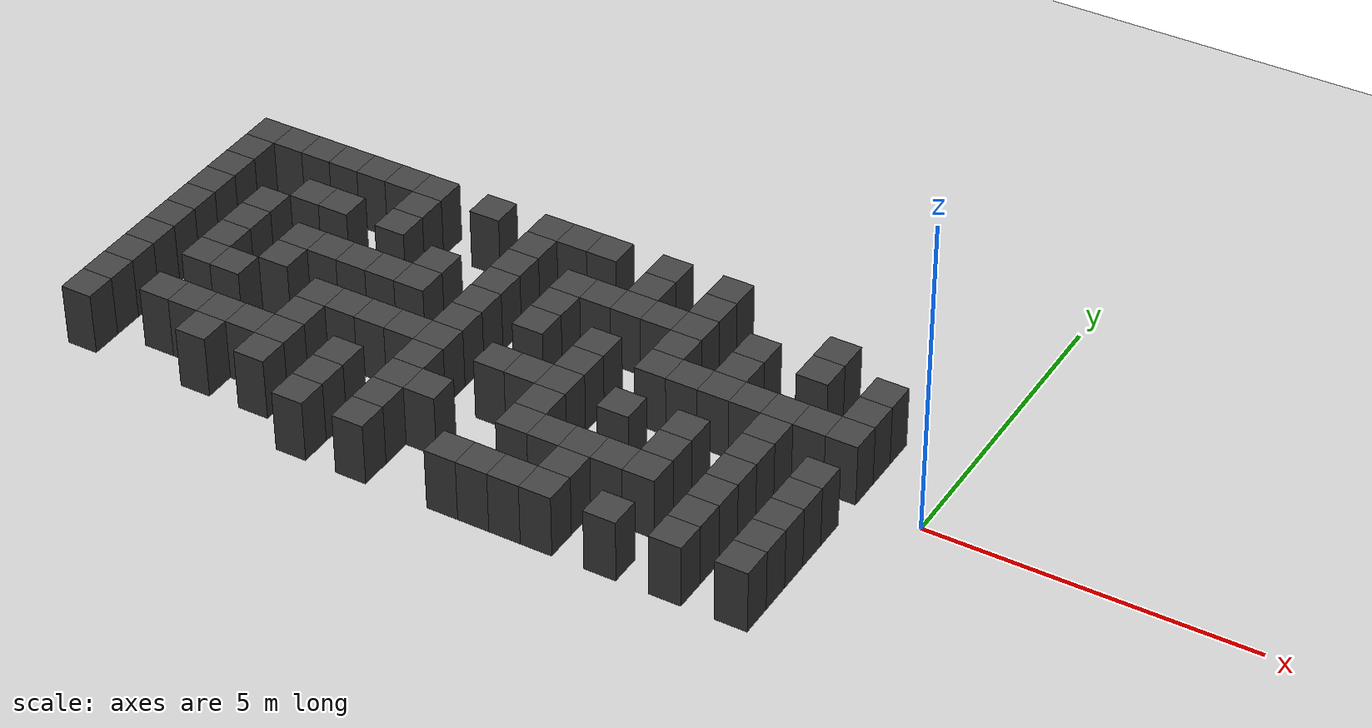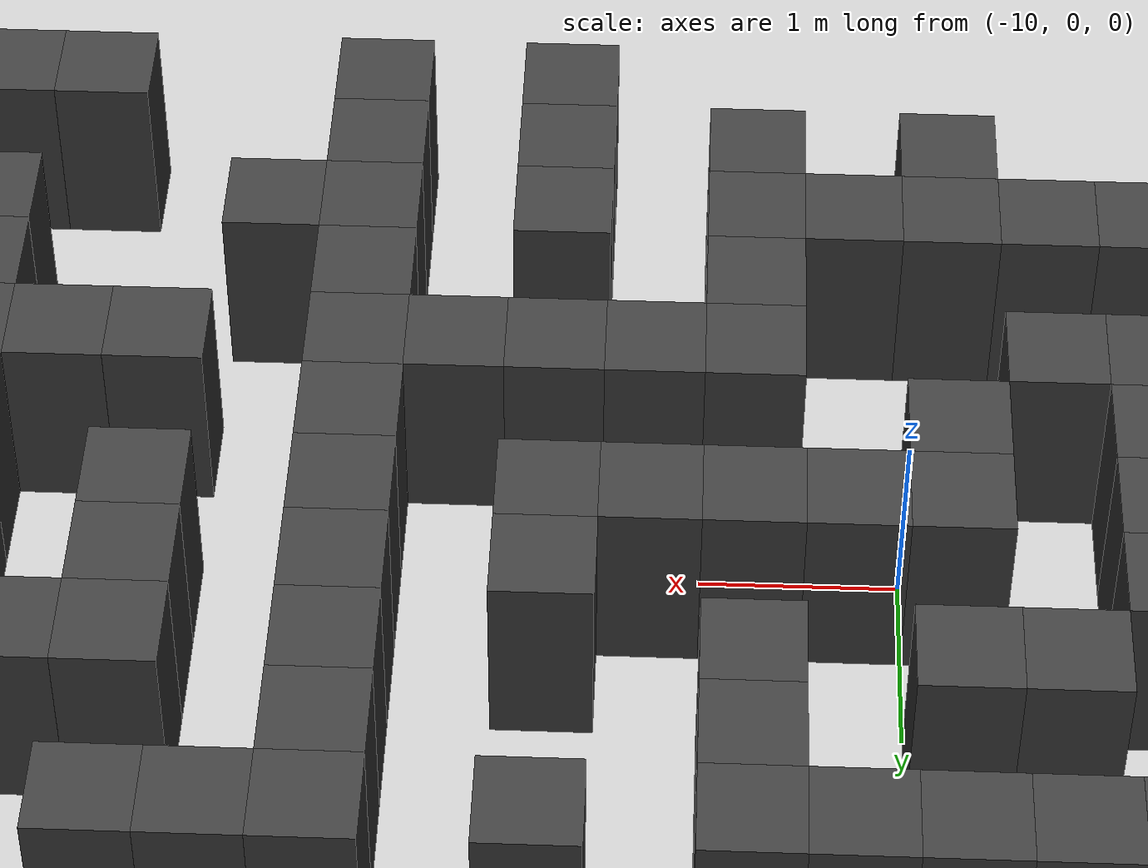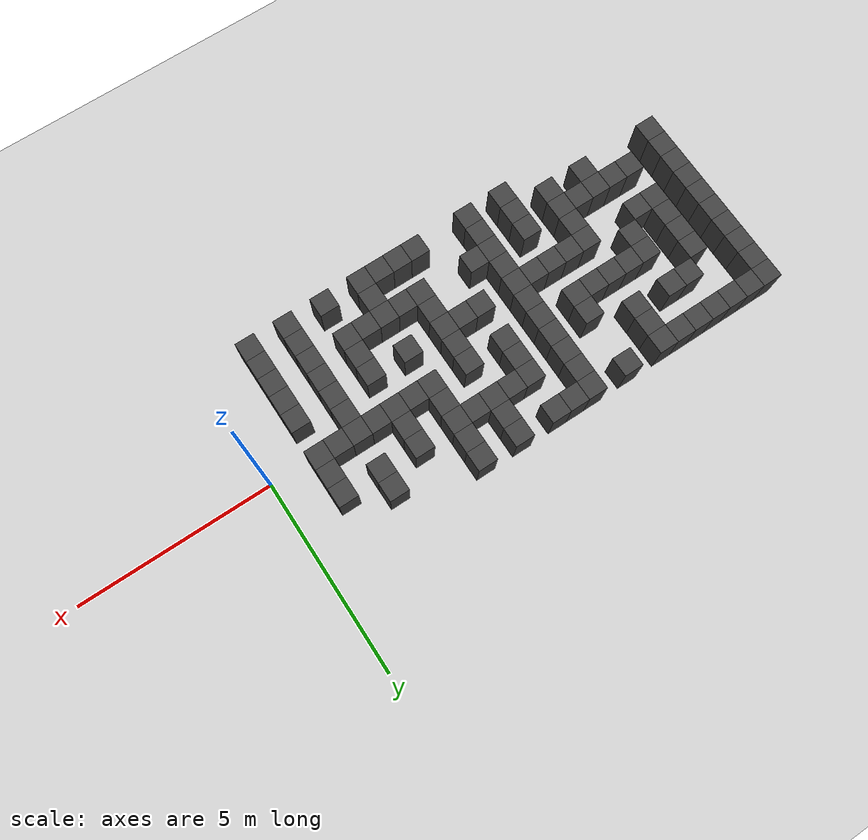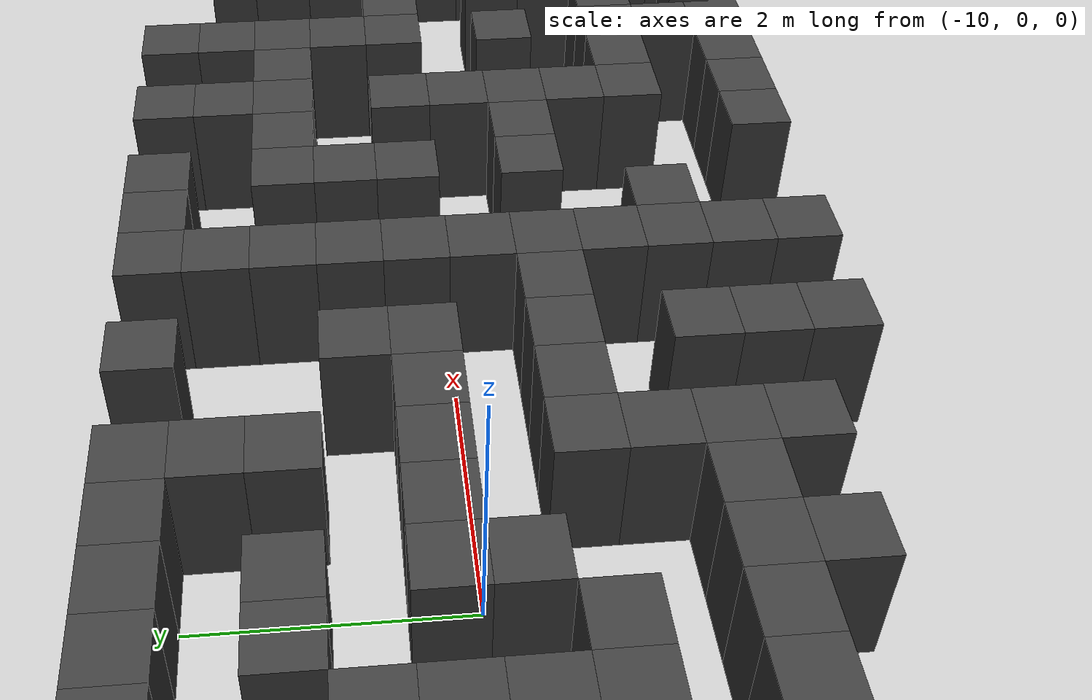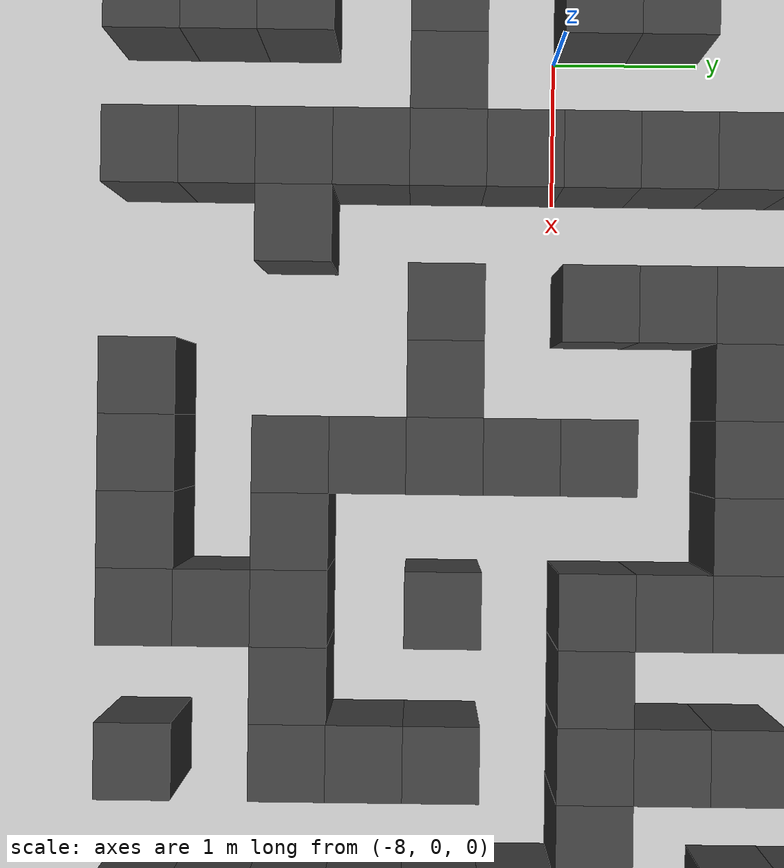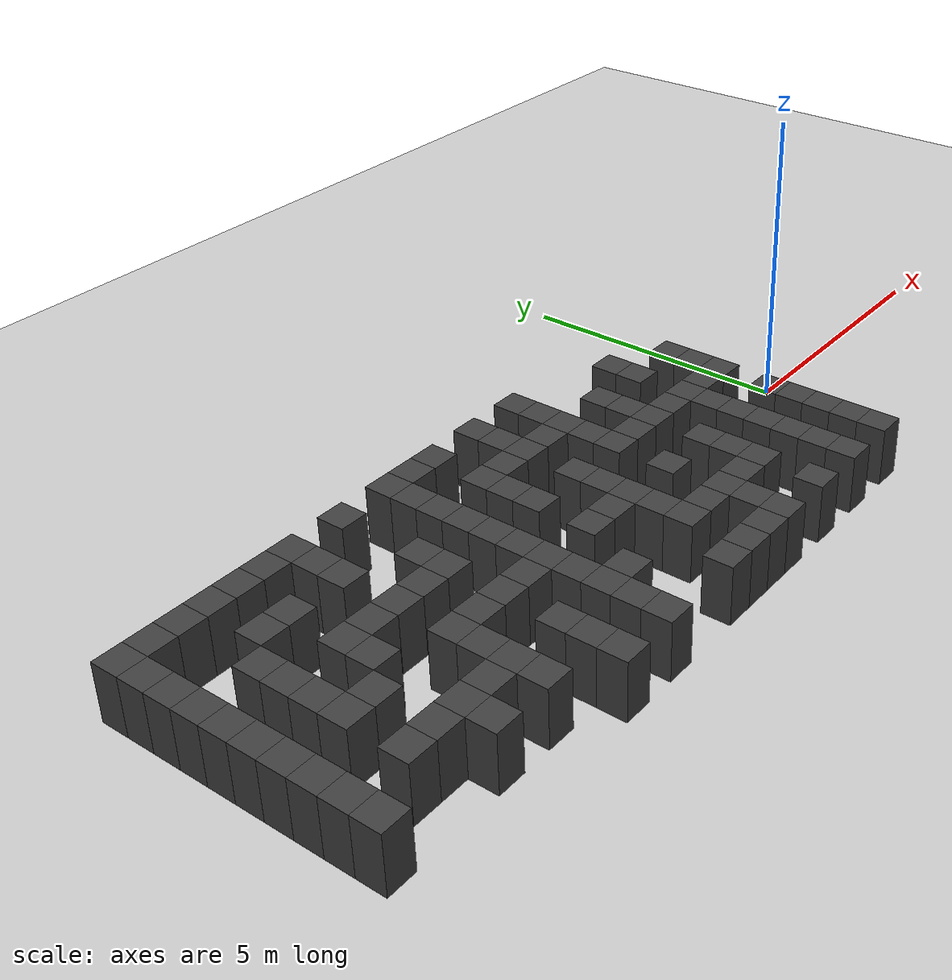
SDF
<sdf version="1.7">
 <world name="map_18228">
  <model name="ground_plane">
   <static>true</static>
   <link name="link">
    <collision name="collision">
     <geometry><plane><normal>0 0 1</normal><size>200 200</size></plane></geometry>
    </collision>
    <visual name="visual">
     <geometry><plane><normal>0 0 1</normal><size>200 200</size></plane></geometry>
     <material><ambient>0.8 0.8 0.8 1</ambient><diffuse>0.8 0.8 0.8 1</diffuse></material>
    </visual>
   </link>
  </model>
  <model name="maze_environment">
   <static>true</static>
   <link name="wall_501">
    <pose>-12.250 2.250 0.500 0 0 0</pose>
    <collision name="col"><geometry><box><size>0.5 0.5 1.0</size></box></geometry></collision>
    <visual name="vis">
     <geometry><box><size>0.5 0.5 1.0</size></box></geometry>
     <material><ambient>0.15 0.15 0.15 1</ambient><diffuse>0.25 0.25 0.25 1</diffuse></material>
    </visual>
   </link>
   <link name="wall_502">
    <pose>-11.750 2.250 0.500 0 0 0</pose>
    <collision name="col"><geometry><box><size>0.5 0.5 1.0</size></box></geometry></collision>
    <visual name="vis">
     <geometry><box><size>0.5 0.5 1.0</size></box></geometry>
     <material><ambient>0.15 0.15 0.15 1</ambient><diffuse>0.25 0.25 0.25 1</diffuse></material>
    </visual>
   </link>
   <link name="wall_503">
    <pose>-11.250 2.250 0.500 0 0 0</pose>
    <collision name="col"><geometry><box><size>0.5 0.5 1.0</size></box></geometry></collision>
    <visual name="vis">
     <geometry><box><size>0.5 0.5 1.0</size></box></geometry>
     <material><ambient>0.15 0.15 0.15 1</ambient><diffuse>0.25 0.25 0.25 1</diffuse></material>
    </visual>
   </link>
   <link name="wall_504">
    <pose>-10.750 2.250 0.500 0 0 0</pose>
    <collision name="col"><geometry><box><size>0.5 0.5 1.0</size></box></geometry></collision>
    <visual name="vis">
     <geometry><box><size>0.5 0.5 1.0</size></box></geometry>
     <material><ambient>0.15 0.15 0.15 1</ambient><diffuse>0.25 0.25 0.25 1</diffuse></material>
    </visual>
   </link>
   <link name="wall_505">
    <pose>-10.250 2.250 0.500 0 0 0</pose>
    <collision name="col"><geometry><box><size>0.5 0.5 1.0</size></box></geometry></collision>
    <visual name="vis">
     <geometry><box><size>0.5 0.5 1.0</size></box></geometry>
     <material><ambient>0.15 0.15 0.15 1</ambient><diffuse>0.25 0.25 0.25 1</diffuse></material>
    </visual>
   </link>
   <link name="wall_506">
    <pose>-9.750 2.250 0.500 0 0 0</pose>
    <collision name="col"><geometry><box><size>0.5 0.5 1.0</size></box></geometry></collision>
    <visual name="vis">
     <geometry><box><size>0.5 0.5 1.0</size></box></geometry>
     <material><ambient>0.15 0.15 0.15 1</ambient><diffuse>0.25 0.25 0.25 1</diffuse></material>
    </visual>
   </link>
   <link name="wall_507">
    <pose>-9.250 2.250 0.500 0 0 0</pose>
    <collision name="col"><geometry><box><size>0.5 0.5 1.0</size></box></geometry></collision>
    <visual name="vis">
     <geometry><box><size>0.5 0.5 1.0</size></box></geometry>
     <material><ambient>0.15 0.15 0.15 1</ambient><diffuse>0.25 0.25 0.25 1</diffuse></material>
    </visual>
   </link>
   <link name="wall_508">
    <pose>-8.250 2.250 0.500 0 0 0</pose>
    <collision name="col"><geometry><box><size>0.5 0.5 1.0</size></box></geometry></collision>
    <visual name="vis">
     <geometry><box><size>0.5 0.5 1.0</size></box></geometry>
     <material><ambient>0.15 0.15 0.15 1</ambient><diffuse>0.25 0.25 0.25 1</diffuse></material>
    </visual>
   </link>
   <link name="wall_509">
    <pose>-7.250 2.250 0.500 0 0 0</pose>
    <collision name="col"><geometry><box><size>0.5 0.5 1.0</size></box></geometry></collision>
    <visual name="vis">
     <geometry><box><size>0.5 0.5 1.0</size></box></geometry>
     <material><ambient>0.15 0.15 0.15 1</ambient><diffuse>0.25 0.25 0.25 1</diffuse></material>
    </visual>
   </link>
   <link name="wall_510">
    <pose>-6.750 2.250 0.500 0 0 0</pose>
    <collision name="col"><geometry><box><size>0.5 0.5 1.0</size></box></geometry></collision>
    <visual name="vis">
     <geometry><box><size>0.5 0.5 1.0</size></box></geometry>
     <material><ambient>0.15 0.15 0.15 1</ambient><diffuse>0.25 0.25 0.25 1</diffuse></material>
    </visual>
   </link>
   <link name="wall_511">
    <pose>-6.250 2.250 0.500 0 0 0</pose>
    <collision name="col"><geometry><box><size>0.5 0.5 1.0</size></box></geometry></collision>
    <visual name="vis">
     <geometry><box><size>0.5 0.5 1.0</size></box></geometry>
     <material><ambient>0.15 0.15 0.15 1</ambient><diffuse>0.25 0.25 0.25 1</diffuse></material>
    </visual>
   </link>
   <link name="wall_512">
    <pose>-5.250 2.250 0.500 0 0 0</pose>
    <collision name="col"><geometry><box><size>0.5 0.5 1.0</size></box></geometry></collision>
    <visual name="vis">
     <geometry><box><size>0.5 0.5 1.0</size></box></geometry>
     <material><ambient>0.15 0.15 0.15 1</ambient><diffuse>0.25 0.25 0.25 1</diffuse></material>
    </visual>
   </link>
   <link name="wall_513">
    <pose>-4.250 2.250 0.500 0 0 0</pose>
    <collision name="col"><geometry><box><size>0.5 0.5 1.0</size></box></geometry></collision>
    <visual name="vis">
     <geometry><box><size>0.5 0.5 1.0</size></box></geometry>
     <material><ambient>0.15 0.15 0.15 1</ambient><diffuse>0.25 0.25 0.25 1</diffuse></material>
    </visual>
   </link>
   <link name="wall_539">
    <pose>-12.250 1.750 0.500 0 0 0</pose>
    <collision name="col"><geometry><box><size>0.5 0.5 1.0</size></box></geometry></collision>
    <visual name="vis">
     <geometry><box><size>0.5 0.5 1.0</size></box></geometry>
     <material><ambient>0.15 0.15 0.15 1</ambient><diffuse>0.25 0.25 0.25 1</diffuse></material>
    </visual>
   </link>
   <link name="wall_540">
    <pose>-9.250 1.750 0.500 0 0 0</pose>
    <collision name="col"><geometry><box><size>0.5 0.5 1.0</size></box></geometry></collision>
    <visual name="vis">
     <geometry><box><size>0.5 0.5 1.0</size></box></geometry>
     <material><ambient>0.15 0.15 0.15 1</ambient><diffuse>0.25 0.25 0.25 1</diffuse></material>
    </visual>
   </link>
   <link name="wall_541">
    <pose>-7.250 1.750 0.500 0 0 0</pose>
    <collision name="col"><geometry><box><size>0.5 0.5 1.0</size></box></geometry></collision>
    <visual name="vis">
     <geometry><box><size>0.5 0.5 1.0</size></box></geometry>
     <material><ambient>0.15 0.15 0.15 1</ambient><diffuse>0.25 0.25 0.25 1</diffuse></material>
    </visual>
   </link>
   <link name="wall_542">
    <pose>-5.250 1.750 0.500 0 0 0</pose>
    <collision name="col"><geometry><box><size>0.5 0.5 1.0</size></box></geometry></collision>
    <visual name="vis">
     <geometry><box><size>0.5 0.5 1.0</size></box></geometry>
     <material><ambient>0.15 0.15 0.15 1</ambient><diffuse>0.25 0.25 0.25 1</diffuse></material>
    </visual>
   </link>
   <link name="wall_543">
    <pose>-4.250 1.750 0.500 0 0 0</pose>
    <collision name="col"><geometry><box><size>0.5 0.5 1.0</size></box></geometry></collision>
    <visual name="vis">
     <geometry><box><size>0.5 0.5 1.0</size></box></geometry>
     <material><ambient>0.15 0.15 0.15 1</ambient><diffuse>0.25 0.25 0.25 1</diffuse></material>
    </visual>
   </link>
   <link name="wall_544">
    <pose>-2.250 1.750 0.500 0 0 0</pose>
    <collision name="col"><geometry><box><size>0.5 0.5 1.0</size></box></geometry></collision>
    <visual name="vis">
     <geometry><box><size>0.5 0.5 1.0</size></box></geometry>
     <material><ambient>0.15 0.15 0.15 1</ambient><diffuse>0.25 0.25 0.25 1</diffuse></material>
    </visual>
   </link>
   <link name="wall_551">
    <pose>-12.250 1.250 0.500 0 0 0</pose>
    <collision name="col"><geometry><box><size>0.5 0.5 1.0</size></box></geometry></collision>
    <visual name="vis">
     <geometry><box><size>0.5 0.5 1.0</size></box></geometry>
     <material><ambient>0.15 0.15 0.15 1</ambient><diffuse>0.25 0.25 0.25 1</diffuse></material>
    </visual>
   </link>
   <link name="wall_552">
    <pose>-10.750 1.250 0.500 0 0 0</pose>
    <collision name="col"><geometry><box><size>0.5 0.5 1.0</size></box></geometry></collision>
    <visual name="vis">
     <geometry><box><size>0.5 0.5 1.0</size></box></geometry>
     <material><ambient>0.15 0.15 0.15 1</ambient><diffuse>0.25 0.25 0.25 1</diffuse></material>
    </visual>
   </link>
   <link name="wall_553">
    <pose>-10.250 1.250 0.500 0 0 0</pose>
    <collision name="col"><geometry><box><size>0.5 0.5 1.0</size></box></geometry></collision>
    <visual name="vis">
     <geometry><box><size>0.5 0.5 1.0</size></box></geometry>
     <material><ambient>0.15 0.15 0.15 1</ambient><diffuse>0.25 0.25 0.25 1</diffuse></material>
    </visual>
   </link>
   <link name="wall_554">
    <pose>-9.250 1.250 0.500 0 0 0</pose>
    <collision name="col"><geometry><box><size>0.5 0.5 1.0</size></box></geometry></collision>
    <visual name="vis">
     <geometry><box><size>0.5 0.5 1.0</size></box></geometry>
     <material><ambient>0.15 0.15 0.15 1</ambient><diffuse>0.25 0.25 0.25 1</diffuse></material>
    </visual>
   </link>
   <link name="wall_555">
    <pose>-7.250 1.250 0.500 0 0 0</pose>
    <collision name="col"><geometry><box><size>0.5 0.5 1.0</size></box></geometry></collision>
    <visual name="vis">
     <geometry><box><size>0.5 0.5 1.0</size></box></geometry>
     <material><ambient>0.15 0.15 0.15 1</ambient><diffuse>0.25 0.25 0.25 1</diffuse></material>
    </visual>
   </link>
   <link name="wall_556">
    <pose>-6.250 1.250 0.500 0 0 0</pose>
    <collision name="col"><geometry><box><size>0.5 0.5 1.0</size></box></geometry></collision>
    <visual name="vis">
     <geometry><box><size>0.5 0.5 1.0</size></box></geometry>
     <material><ambient>0.15 0.15 0.15 1</ambient><diffuse>0.25 0.25 0.25 1</diffuse></material>
    </visual>
   </link>
   <link name="wall_557">
    <pose>-5.750 1.250 0.500 0 0 0</pose>
    <collision name="col"><geometry><box><size>0.5 0.5 1.0</size></box></geometry></collision>
    <visual name="vis">
     <geometry><box><size>0.5 0.5 1.0</size></box></geometry>
     <material><ambient>0.15 0.15 0.15 1</ambient><diffuse>0.25 0.25 0.25 1</diffuse></material>
    </visual>
   </link>
   <link name="wall_558">
    <pose>-5.250 1.250 0.500 0 0 0</pose>
    <collision name="col"><geometry><box><size>0.5 0.5 1.0</size></box></geometry></collision>
    <visual name="vis">
     <geometry><box><size>0.5 0.5 1.0</size></box></geometry>
     <material><ambient>0.15 0.15 0.15 1</ambient><diffuse>0.25 0.25 0.25 1</diffuse></material>
    </visual>
   </link>
   <link name="wall_559">
    <pose>-4.750 1.250 0.500 0 0 0</pose>
    <collision name="col"><geometry><box><size>0.5 0.5 1.0</size></box></geometry></collision>
    <visual name="vis">
     <geometry><box><size>0.5 0.5 1.0</size></box></geometry>
     <material><ambient>0.15 0.15 0.15 1</ambient><diffuse>0.25 0.25 0.25 1</diffuse></material>
    </visual>
   </link>
   <link name="wall_560">
    <pose>-4.250 1.250 0.500 0 0 0</pose>
    <collision name="col"><geometry><box><size>0.5 0.5 1.0</size></box></geometry></collision>
    <visual name="vis">
     <geometry><box><size>0.5 0.5 1.0</size></box></geometry>
     <material><ambient>0.15 0.15 0.15 1</ambient><diffuse>0.25 0.25 0.25 1</diffuse></material>
    </visual>
   </link>
   <link name="wall_561">
    <pose>-3.250 1.250 0.500 0 0 0</pose>
    <collision name="col"><geometry><box><size>0.5 0.5 1.0</size></box></geometry></collision>
    <visual name="vis">
     <geometry><box><size>0.5 0.5 1.0</size></box></geometry>
     <material><ambient>0.15 0.15 0.15 1</ambient><diffuse>0.25 0.25 0.25 1</diffuse></material>
    </visual>
   </link>
   <link name="wall_562">
    <pose>-2.250 1.250 0.500 0 0 0</pose>
    <collision name="col"><geometry><box><size>0.5 0.5 1.0</size></box></geometry></collision>
    <visual name="vis">
     <geometry><box><size>0.5 0.5 1.0</size></box></geometry>
     <material><ambient>0.15 0.15 0.15 1</ambient><diffuse>0.25 0.25 0.25 1</diffuse></material>
    </visual>
   </link>
   <link name="wall_563">
    <pose>-1.250 1.250 0.500 0 0 0</pose>
    <collision name="col"><geometry><box><size>0.5 0.5 1.0</size></box></geometry></collision>
    <visual name="vis">
     <geometry><box><size>0.5 0.5 1.0</size></box></geometry>
     <material><ambient>0.15 0.15 0.15 1</ambient><diffuse>0.25 0.25 0.25 1</diffuse></material>
    </visual>
   </link>
   <link name="wall_587">
    <pose>-12.250 0.750 0.500 0 0 0</pose>
    <collision name="col"><geometry><box><size>0.5 0.5 1.0</size></box></geometry></collision>
    <visual name="vis">
     <geometry><box><size>0.5 0.5 1.0</size></box></geometry>
     <material><ambient>0.15 0.15 0.15 1</ambient><diffuse>0.25 0.25 0.25 1</diffuse></material>
    </visual>
   </link>
   <link name="wall_588">
    <pose>-11.250 0.750 0.500 0 0 0</pose>
    <collision name="col"><geometry><box><size>0.5 0.5 1.0</size></box></geometry></collision>
    <visual name="vis">
     <geometry><box><size>0.5 0.5 1.0</size></box></geometry>
     <material><ambient>0.15 0.15 0.15 1</ambient><diffuse>0.25 0.25 0.25 1</diffuse></material>
    </visual>
   </link>
   <link name="wall_589">
    <pose>-8.250 0.750 0.500 0 0 0</pose>
    <collision name="col"><geometry><box><size>0.5 0.5 1.0</size></box></geometry></collision>
    <visual name="vis">
     <geometry><box><size>0.5 0.5 1.0</size></box></geometry>
     <material><ambient>0.15 0.15 0.15 1</ambient><diffuse>0.25 0.25 0.25 1</diffuse></material>
    </visual>
   </link>
   <link name="wall_590">
    <pose>-7.250 0.750 0.500 0 0 0</pose>
    <collision name="col"><geometry><box><size>0.5 0.5 1.0</size></box></geometry></collision>
    <visual name="vis">
     <geometry><box><size>0.5 0.5 1.0</size></box></geometry>
     <material><ambient>0.15 0.15 0.15 1</ambient><diffuse>0.25 0.25 0.25 1</diffuse></material>
    </visual>
   </link>
   <link name="wall_591">
    <pose>-6.250 0.750 0.500 0 0 0</pose>
    <collision name="col"><geometry><box><size>0.5 0.5 1.0</size></box></geometry></collision>
    <visual name="vis">
     <geometry><box><size>0.5 0.5 1.0</size></box></geometry>
     <material><ambient>0.15 0.15 0.15 1</ambient><diffuse>0.25 0.25 0.25 1</diffuse></material>
    </visual>
   </link>
   <link name="wall_592">
    <pose>-4.250 0.750 0.500 0 0 0</pose>
    <collision name="col"><geometry><box><size>0.5 0.5 1.0</size></box></geometry></collision>
    <visual name="vis">
     <geometry><box><size>0.5 0.5 1.0</size></box></geometry>
     <material><ambient>0.15 0.15 0.15 1</ambient><diffuse>0.25 0.25 0.25 1</diffuse></material>
    </visual>
   </link>
   <link name="wall_593">
    <pose>-3.250 0.750 0.500 0 0 0</pose>
    <collision name="col"><geometry><box><size>0.5 0.5 1.0</size></box></geometry></collision>
    <visual name="vis">
     <geometry><box><size>0.5 0.5 1.0</size></box></geometry>
     <material><ambient>0.15 0.15 0.15 1</ambient><diffuse>0.25 0.25 0.25 1</diffuse></material>
    </visual>
   </link>
   <link name="wall_594">
    <pose>-1.250 0.750 0.500 0 0 0</pose>
    <collision name="col"><geometry><box><size>0.5 0.5 1.0</size></box></geometry></collision>
    <visual name="vis">
     <geometry><box><size>0.5 0.5 1.0</size></box></geometry>
     <material><ambient>0.15 0.15 0.15 1</ambient><diffuse>0.25 0.25 0.25 1</diffuse></material>
    </visual>
   </link>
   <link name="wall_601">
    <pose>-12.250 0.250 0.500 0 0 0</pose>
    <collision name="col"><geometry><box><size>0.5 0.5 1.0</size></box></geometry></collision>
    <visual name="vis">
     <geometry><box><size>0.5 0.5 1.0</size></box></geometry>
     <material><ambient>0.15 0.15 0.15 1</ambient><diffuse>0.25 0.25 0.25 1</diffuse></material>
    </visual>
   </link>
   <link name="wall_602">
    <pose>-11.250 0.250 0.500 0 0 0</pose>
    <collision name="col"><geometry><box><size>0.5 0.5 1.0</size></box></geometry></collision>
    <visual name="vis">
     <geometry><box><size>0.5 0.5 1.0</size></box></geometry>
     <material><ambient>0.15 0.15 0.15 1</ambient><diffuse>0.25 0.25 0.25 1</diffuse></material>
    </visual>
   </link>
   <link name="wall_603">
    <pose>-10.250 0.250 0.500 0 0 0</pose>
    <collision name="col"><geometry><box><size>0.5 0.5 1.0</size></box></geometry></collision>
    <visual name="vis">
     <geometry><box><size>0.5 0.5 1.0</size></box></geometry>
     <material><ambient>0.15 0.15 0.15 1</ambient><diffuse>0.25 0.25 0.25 1</diffuse></material>
    </visual>
   </link>
   <link name="wall_604">
    <pose>-9.750 0.250 0.500 0 0 0</pose>
    <collision name="col"><geometry><box><size>0.5 0.5 1.0</size></box></geometry></collision>
    <visual name="vis">
     <geometry><box><size>0.5 0.5 1.0</size></box></geometry>
     <material><ambient>0.15 0.15 0.15 1</ambient><diffuse>0.25 0.25 0.25 1</diffuse></material>
    </visual>
   </link>
   <link name="wall_605">
    <pose>-9.250 0.250 0.500 0 0 0</pose>
    <collision name="col"><geometry><box><size>0.5 0.5 1.0</size></box></geometry></collision>
    <visual name="vis">
     <geometry><box><size>0.5 0.5 1.0</size></box></geometry>
     <material><ambient>0.15 0.15 0.15 1</ambient><diffuse>0.25 0.25 0.25 1</diffuse></material>
    </visual>
   </link>
   <link name="wall_606">
    <pose>-8.750 0.250 0.500 0 0 0</pose>
    <collision name="col"><geometry><box><size>0.5 0.5 1.0</size></box></geometry></collision>
    <visual name="vis">
     <geometry><box><size>0.5 0.5 1.0</size></box></geometry>
     <material><ambient>0.15 0.15 0.15 1</ambient><diffuse>0.25 0.25 0.25 1</diffuse></material>
    </visual>
   </link>
   <link name="wall_607">
    <pose>-8.250 0.250 0.500 0 0 0</pose>
    <collision name="col"><geometry><box><size>0.5 0.5 1.0</size></box></geometry></collision>
    <visual name="vis">
     <geometry><box><size>0.5 0.5 1.0</size></box></geometry>
     <material><ambient>0.15 0.15 0.15 1</ambient><diffuse>0.25 0.25 0.25 1</diffuse></material>
    </visual>
   </link>
   <link name="wall_608">
    <pose>-7.250 0.250 0.500 0 0 0</pose>
    <collision name="col"><geometry><box><size>0.5 0.5 1.0</size></box></geometry></collision>
    <visual name="vis">
     <geometry><box><size>0.5 0.5 1.0</size></box></geometry>
     <material><ambient>0.15 0.15 0.15 1</ambient><diffuse>0.25 0.25 0.25 1</diffuse></material>
    </visual>
   </link>
   <link name="wall_609">
    <pose>-6.250 0.250 0.500 0 0 0</pose>
    <collision name="col"><geometry><box><size>0.5 0.5 1.0</size></box></geometry></collision>
    <visual name="vis">
     <geometry><box><size>0.5 0.5 1.0</size></box></geometry>
     <material><ambient>0.15 0.15 0.15 1</ambient><diffuse>0.25 0.25 0.25 1</diffuse></material>
    </visual>
   </link>
   <link name="wall_610">
    <pose>-5.250 0.250 0.500 0 0 0</pose>
    <collision name="col"><geometry><box><size>0.5 0.5 1.0</size></box></geometry></collision>
    <visual name="vis">
     <geometry><box><size>0.5 0.5 1.0</size></box></geometry>
     <material><ambient>0.15 0.15 0.15 1</ambient><diffuse>0.25 0.25 0.25 1</diffuse></material>
    </visual>
   </link>
   <link name="wall_611">
    <pose>-4.250 0.250 0.500 0 0 0</pose>
    <collision name="col"><geometry><box><size>0.5 0.5 1.0</size></box></geometry></collision>
    <visual name="vis">
     <geometry><box><size>0.5 0.5 1.0</size></box></geometry>
     <material><ambient>0.15 0.15 0.15 1</ambient><diffuse>0.25 0.25 0.25 1</diffuse></material>
    </visual>
   </link>
   <link name="wall_612">
    <pose>-3.750 0.250 0.500 0 0 0</pose>
    <collision name="col"><geometry><box><size>0.5 0.5 1.0</size></box></geometry></collision>
    <visual name="vis">
     <geometry><box><size>0.5 0.5 1.0</size></box></geometry>
     <material><ambient>0.15 0.15 0.15 1</ambient><diffuse>0.25 0.25 0.25 1</diffuse></material>
    </visual>
   </link>
   <link name="wall_613">
    <pose>-3.250 0.250 0.500 0 0 0</pose>
    <collision name="col"><geometry><box><size>0.5 0.5 1.0</size></box></geometry></collision>
    <visual name="vis">
     <geometry><box><size>0.5 0.5 1.0</size></box></geometry>
     <material><ambient>0.15 0.15 0.15 1</ambient><diffuse>0.25 0.25 0.25 1</diffuse></material>
    </visual>
   </link>
   <link name="wall_614">
    <pose>-2.750 0.250 0.500 0 0 0</pose>
    <collision name="col"><geometry><box><size>0.5 0.5 1.0</size></box></geometry></collision>
    <visual name="vis">
     <geometry><box><size>0.5 0.5 1.0</size></box></geometry>
     <material><ambient>0.15 0.15 0.15 1</ambient><diffuse>0.25 0.25 0.25 1</diffuse></material>
    </visual>
   </link>
   <link name="wall_615">
    <pose>-2.250 0.250 0.500 0 0 0</pose>
    <collision name="col"><geometry><box><size>0.5 0.5 1.0</size></box></geometry></collision>
    <visual name="vis">
     <geometry><box><size>0.5 0.5 1.0</size></box></geometry>
     <material><ambient>0.15 0.15 0.15 1</ambient><diffuse>0.25 0.25 0.25 1</diffuse></material>
    </visual>
   </link>
   <link name="wall_616">
    <pose>-1.750 0.250 0.500 0 0 0</pose>
    <collision name="col"><geometry><box><size>0.5 0.5 1.0</size></box></geometry></collision>
    <visual name="vis">
     <geometry><box><size>0.5 0.5 1.0</size></box></geometry>
     <material><ambient>0.15 0.15 0.15 1</ambient><diffuse>0.25 0.25 0.25 1</diffuse></material>
    </visual>
   </link>
   <link name="wall_617">
    <pose>-1.250 0.250 0.500 0 0 0</pose>
    <collision name="col"><geometry><box><size>0.5 0.5 1.0</size></box></geometry></collision>
    <visual name="vis">
     <geometry><box><size>0.5 0.5 1.0</size></box></geometry>
     <material><ambient>0.15 0.15 0.15 1</ambient><diffuse>0.25 0.25 0.25 1</diffuse></material>
    </visual>
   </link>
   <link name="wall_637">
    <pose>-12.250 -0.250 0.500 0 0 0</pose>
    <collision name="col"><geometry><box><size>0.5 0.5 1.0</size></box></geometry></collision>
    <visual name="vis">
     <geometry><box><size>0.5 0.5 1.0</size></box></geometry>
     <material><ambient>0.15 0.15 0.15 1</ambient><diffuse>0.25 0.25 0.25 1</diffuse></material>
    </visual>
   </link>
   <link name="wall_638">
    <pose>-11.250 -0.250 0.500 0 0 0</pose>
    <collision name="col"><geometry><box><size>0.5 0.5 1.0</size></box></geometry></collision>
    <visual name="vis">
     <geometry><box><size>0.5 0.5 1.0</size></box></geometry>
     <material><ambient>0.15 0.15 0.15 1</ambient><diffuse>0.25 0.25 0.25 1</diffuse></material>
    </visual>
   </link>
   <link name="wall_639">
    <pose>-10.250 -0.250 0.500 0 0 0</pose>
    <collision name="col"><geometry><box><size>0.5 0.5 1.0</size></box></geometry></collision>
    <visual name="vis">
     <geometry><box><size>0.5 0.5 1.0</size></box></geometry>
     <material><ambient>0.15 0.15 0.15 1</ambient><diffuse>0.25 0.25 0.25 1</diffuse></material>
    </visual>
   </link>
   <link name="wall_640">
    <pose>-7.250 -0.250 0.500 0 0 0</pose>
    <collision name="col"><geometry><box><size>0.5 0.5 1.0</size></box></geometry></collision>
    <visual name="vis">
     <geometry><box><size>0.5 0.5 1.0</size></box></geometry>
     <material><ambient>0.15 0.15 0.15 1</ambient><diffuse>0.25 0.25 0.25 1</diffuse></material>
    </visual>
   </link>
   <link name="wall_641">
    <pose>-5.250 -0.250 0.500 0 0 0</pose>
    <collision name="col"><geometry><box><size>0.5 0.5 1.0</size></box></geometry></collision>
    <visual name="vis">
     <geometry><box><size>0.5 0.5 1.0</size></box></geometry>
     <material><ambient>0.15 0.15 0.15 1</ambient><diffuse>0.25 0.25 0.25 1</diffuse></material>
    </visual>
   </link>
   <link name="wall_642">
    <pose>-2.250 -0.250 0.500 0 0 0</pose>
    <collision name="col"><geometry><box><size>0.5 0.5 1.0</size></box></geometry></collision>
    <visual name="vis">
     <geometry><box><size>0.5 0.5 1.0</size></box></geometry>
     <material><ambient>0.15 0.15 0.15 1</ambient><diffuse>0.25 0.25 0.25 1</diffuse></material>
    </visual>
   </link>
   <link name="wall_653">
    <pose>-12.250 -0.750 0.500 0 0 0</pose>
    <collision name="col"><geometry><box><size>0.5 0.5 1.0</size></box></geometry></collision>
    <visual name="vis">
     <geometry><box><size>0.5 0.5 1.0</size></box></geometry>
     <material><ambient>0.15 0.15 0.15 1</ambient><diffuse>0.25 0.25 0.25 1</diffuse></material>
    </visual>
   </link>
   <link name="wall_654">
    <pose>-11.250 -0.750 0.500 0 0 0</pose>
    <collision name="col"><geometry><box><size>0.5 0.5 1.0</size></box></geometry></collision>
    <visual name="vis">
     <geometry><box><size>0.5 0.5 1.0</size></box></geometry>
     <material><ambient>0.15 0.15 0.15 1</ambient><diffuse>0.25 0.25 0.25 1</diffuse></material>
    </visual>
   </link>
   <link name="wall_655">
    <pose>-10.750 -0.750 0.500 0 0 0</pose>
    <collision name="col"><geometry><box><size>0.5 0.5 1.0</size></box></geometry></collision>
    <visual name="vis">
     <geometry><box><size>0.5 0.5 1.0</size></box></geometry>
     <material><ambient>0.15 0.15 0.15 1</ambient><diffuse>0.25 0.25 0.25 1</diffuse></material>
    </visual>
   </link>
   <link name="wall_656">
    <pose>-9.250 -0.750 0.500 0 0 0</pose>
    <collision name="col"><geometry><box><size>0.5 0.5 1.0</size></box></geometry></collision>
    <visual name="vis">
     <geometry><box><size>0.5 0.5 1.0</size></box></geometry>
     <material><ambient>0.15 0.15 0.15 1</ambient><diffuse>0.25 0.25 0.25 1</diffuse></material>
    </visual>
   </link>
   <link name="wall_657">
    <pose>-8.750 -0.750 0.500 0 0 0</pose>
    <collision name="col"><geometry><box><size>0.5 0.5 1.0</size></box></geometry></collision>
    <visual name="vis">
     <geometry><box><size>0.5 0.5 1.0</size></box></geometry>
     <material><ambient>0.15 0.15 0.15 1</ambient><diffuse>0.25 0.25 0.25 1</diffuse></material>
    </visual>
   </link>
   <link name="wall_658">
    <pose>-8.250 -0.750 0.500 0 0 0</pose>
    <collision name="col"><geometry><box><size>0.5 0.5 1.0</size></box></geometry></collision>
    <visual name="vis">
     <geometry><box><size>0.5 0.5 1.0</size></box></geometry>
     <material><ambient>0.15 0.15 0.15 1</ambient><diffuse>0.25 0.25 0.25 1</diffuse></material>
    </visual>
   </link>
   <link name="wall_659">
    <pose>-7.750 -0.750 0.500 0 0 0</pose>
    <collision name="col"><geometry><box><size>0.5 0.5 1.0</size></box></geometry></collision>
    <visual name="vis">
     <geometry><box><size>0.5 0.5 1.0</size></box></geometry>
     <material><ambient>0.15 0.15 0.15 1</ambient><diffuse>0.25 0.25 0.25 1</diffuse></material>
    </visual>
   </link>
   <link name="wall_660">
    <pose>-7.250 -0.750 0.500 0 0 0</pose>
    <collision name="col"><geometry><box><size>0.5 0.5 1.0</size></box></geometry></collision>
    <visual name="vis">
     <geometry><box><size>0.5 0.5 1.0</size></box></geometry>
     <material><ambient>0.15 0.15 0.15 1</ambient><diffuse>0.25 0.25 0.25 1</diffuse></material>
    </visual>
   </link>
   <link name="wall_661">
    <pose>-6.250 -0.750 0.500 0 0 0</pose>
    <collision name="col"><geometry><box><size>0.5 0.5 1.0</size></box></geometry></collision>
    <visual name="vis">
     <geometry><box><size>0.5 0.5 1.0</size></box></geometry>
     <material><ambient>0.15 0.15 0.15 1</ambient><diffuse>0.25 0.25 0.25 1</diffuse></material>
    </visual>
   </link>
   <link name="wall_662">
    <pose>-5.750 -0.750 0.500 0 0 0</pose>
    <collision name="col"><geometry><box><size>0.5 0.5 1.0</size></box></geometry></collision>
    <visual name="vis">
     <geometry><box><size>0.5 0.5 1.0</size></box></geometry>
     <material><ambient>0.15 0.15 0.15 1</ambient><diffuse>0.25 0.25 0.25 1</diffuse></material>
    </visual>
   </link>
   <link name="wall_663">
    <pose>-5.250 -0.750 0.500 0 0 0</pose>
    <collision name="col"><geometry><box><size>0.5 0.5 1.0</size></box></geometry></collision>
    <visual name="vis">
     <geometry><box><size>0.5 0.5 1.0</size></box></geometry>
     <material><ambient>0.15 0.15 0.15 1</ambient><diffuse>0.25 0.25 0.25 1</diffuse></material>
    </visual>
   </link>
   <link name="wall_664">
    <pose>-4.250 -0.750 0.500 0 0 0</pose>
    <collision name="col"><geometry><box><size>0.5 0.5 1.0</size></box></geometry></collision>
    <visual name="vis">
     <geometry><box><size>0.5 0.5 1.0</size></box></geometry>
     <material><ambient>0.15 0.15 0.15 1</ambient><diffuse>0.25 0.25 0.25 1</diffuse></material>
    </visual>
   </link>
   <link name="wall_665">
    <pose>-3.250 -0.750 0.500 0 0 0</pose>
    <collision name="col"><geometry><box><size>0.5 0.5 1.0</size></box></geometry></collision>
    <visual name="vis">
     <geometry><box><size>0.5 0.5 1.0</size></box></geometry>
     <material><ambient>0.15 0.15 0.15 1</ambient><diffuse>0.25 0.25 0.25 1</diffuse></material>
    </visual>
   </link>
   <link name="wall_666">
    <pose>-2.250 -0.750 0.500 0 0 0</pose>
    <collision name="col"><geometry><box><size>0.5 0.5 1.0</size></box></geometry></collision>
    <visual name="vis">
     <geometry><box><size>0.5 0.5 1.0</size></box></geometry>
     <material><ambient>0.15 0.15 0.15 1</ambient><diffuse>0.25 0.25 0.25 1</diffuse></material>
    </visual>
   </link>
   <link name="wall_667">
    <pose>-1.250 -0.750 0.500 0 0 0</pose>
    <collision name="col"><geometry><box><size>0.5 0.5 1.0</size></box></geometry></collision>
    <visual name="vis">
     <geometry><box><size>0.5 0.5 1.0</size></box></geometry>
     <material><ambient>0.15 0.15 0.15 1</ambient><diffuse>0.25 0.25 0.25 1</diffuse></material>
    </visual>
   </link>
   <link name="wall_686">
    <pose>-12.250 -1.250 0.500 0 0 0</pose>
    <collision name="col"><geometry><box><size>0.5 0.5 1.0</size></box></geometry></collision>
    <visual name="vis">
     <geometry><box><size>0.5 0.5 1.0</size></box></geometry>
     <material><ambient>0.15 0.15 0.15 1</ambient><diffuse>0.25 0.25 0.25 1</diffuse></material>
    </visual>
   </link>
   <link name="wall_687">
    <pose>-9.250 -1.250 0.500 0 0 0</pose>
    <collision name="col"><geometry><box><size>0.5 0.5 1.0</size></box></geometry></collision>
    <visual name="vis">
     <geometry><box><size>0.5 0.5 1.0</size></box></geometry>
     <material><ambient>0.15 0.15 0.15 1</ambient><diffuse>0.25 0.25 0.25 1</diffuse></material>
    </visual>
   </link>
   <link name="wall_688">
    <pose>-7.250 -1.250 0.500 0 0 0</pose>
    <collision name="col"><geometry><box><size>0.5 0.5 1.0</size></box></geometry></collision>
    <visual name="vis">
     <geometry><box><size>0.5 0.5 1.0</size></box></geometry>
     <material><ambient>0.15 0.15 0.15 1</ambient><diffuse>0.25 0.25 0.25 1</diffuse></material>
    </visual>
   </link>
   <link name="wall_689">
    <pose>-5.250 -1.250 0.500 0 0 0</pose>
    <collision name="col"><geometry><box><size>0.5 0.5 1.0</size></box></geometry></collision>
    <visual name="vis">
     <geometry><box><size>0.5 0.5 1.0</size></box></geometry>
     <material><ambient>0.15 0.15 0.15 1</ambient><diffuse>0.25 0.25 0.25 1</diffuse></material>
    </visual>
   </link>
   <link name="wall_690">
    <pose>-3.250 -1.250 0.500 0 0 0</pose>
    <collision name="col"><geometry><box><size>0.5 0.5 1.0</size></box></geometry></collision>
    <visual name="vis">
     <geometry><box><size>0.5 0.5 1.0</size></box></geometry>
     <material><ambient>0.15 0.15 0.15 1</ambient><diffuse>0.25 0.25 0.25 1</diffuse></material>
    </visual>
   </link>
   <link name="wall_691">
    <pose>-2.250 -1.250 0.500 0 0 0</pose>
    <collision name="col"><geometry><box><size>0.5 0.5 1.0</size></box></geometry></collision>
    <visual name="vis">
     <geometry><box><size>0.5 0.5 1.0</size></box></geometry>
     <material><ambient>0.15 0.15 0.15 1</ambient><diffuse>0.25 0.25 0.25 1</diffuse></material>
    </visual>
   </link>
   <link name="wall_692">
    <pose>-1.250 -1.250 0.500 0 0 0</pose>
    <collision name="col"><geometry><box><size>0.5 0.5 1.0</size></box></geometry></collision>
    <visual name="vis">
     <geometry><box><size>0.5 0.5 1.0</size></box></geometry>
     <material><ambient>0.15 0.15 0.15 1</ambient><diffuse>0.25 0.25 0.25 1</diffuse></material>
    </visual>
   </link>
   <link name="wall_700">
    <pose>-12.250 -1.750 0.500 0 0 0</pose>
    <collision name="col"><geometry><box><size>0.5 0.5 1.0</size></box></geometry></collision>
    <visual name="vis">
     <geometry><box><size>0.5 0.5 1.0</size></box></geometry>
     <material><ambient>0.15 0.15 0.15 1</ambient><diffuse>0.25 0.25 0.25 1</diffuse></material>
    </visual>
   </link>
   <link name="wall_701">
    <pose>-11.250 -1.750 0.500 0 0 0</pose>
    <collision name="col"><geometry><box><size>0.5 0.5 1.0</size></box></geometry></collision>
    <visual name="vis">
     <geometry><box><size>0.5 0.5 1.0</size></box></geometry>
     <material><ambient>0.15 0.15 0.15 1</ambient><diffuse>0.25 0.25 0.25 1</diffuse></material>
    </visual>
   </link>
   <link name="wall_702">
    <pose>-10.750 -1.750 0.500 0 0 0</pose>
    <collision name="col"><geometry><box><size>0.5 0.5 1.0</size></box></geometry></collision>
    <visual name="vis">
     <geometry><box><size>0.5 0.5 1.0</size></box></geometry>
     <material><ambient>0.15 0.15 0.15 1</ambient><diffuse>0.25 0.25 0.25 1</diffuse></material>
    </visual>
   </link>
   <link name="wall_703">
    <pose>-10.250 -1.750 0.500 0 0 0</pose>
    <collision name="col"><geometry><box><size>0.5 0.5 1.0</size></box></geometry></collision>
    <visual name="vis">
     <geometry><box><size>0.5 0.5 1.0</size></box></geometry>
     <material><ambient>0.15 0.15 0.15 1</ambient><diffuse>0.25 0.25 0.25 1</diffuse></material>
    </visual>
   </link>
   <link name="wall_704">
    <pose>-9.750 -1.750 0.500 0 0 0</pose>
    <collision name="col"><geometry><box><size>0.5 0.5 1.0</size></box></geometry></collision>
    <visual name="vis">
     <geometry><box><size>0.5 0.5 1.0</size></box></geometry>
     <material><ambient>0.15 0.15 0.15 1</ambient><diffuse>0.25 0.25 0.25 1</diffuse></material>
    </visual>
   </link>
   <link name="wall_705">
    <pose>-9.250 -1.750 0.500 0 0 0</pose>
    <collision name="col"><geometry><box><size>0.5 0.5 1.0</size></box></geometry></collision>
    <visual name="vis">
     <geometry><box><size>0.5 0.5 1.0</size></box></geometry>
     <material><ambient>0.15 0.15 0.15 1</ambient><diffuse>0.25 0.25 0.25 1</diffuse></material>
    </visual>
   </link>
   <link name="wall_706">
    <pose>-8.250 -1.750 0.500 0 0 0</pose>
    <collision name="col"><geometry><box><size>0.5 0.5 1.0</size></box></geometry></collision>
    <visual name="vis">
     <geometry><box><size>0.5 0.5 1.0</size></box></geometry>
     <material><ambient>0.15 0.15 0.15 1</ambient><diffuse>0.25 0.25 0.25 1</diffuse></material>
    </visual>
   </link>
   <link name="wall_707">
    <pose>-7.250 -1.750 0.500 0 0 0</pose>
    <collision name="col"><geometry><box><size>0.5 0.5 1.0</size></box></geometry></collision>
    <visual name="vis">
     <geometry><box><size>0.5 0.5 1.0</size></box></geometry>
     <material><ambient>0.15 0.15 0.15 1</ambient><diffuse>0.25 0.25 0.25 1</diffuse></material>
    </visual>
   </link>
   <link name="wall_708">
    <pose>-6.750 -1.750 0.500 0 0 0</pose>
    <collision name="col"><geometry><box><size>0.5 0.5 1.0</size></box></geometry></collision>
    <visual name="vis">
     <geometry><box><size>0.5 0.5 1.0</size></box></geometry>
     <material><ambient>0.15 0.15 0.15 1</ambient><diffuse>0.25 0.25 0.25 1</diffuse></material>
    </visual>
   </link>
   <link name="wall_709">
    <pose>-5.250 -1.750 0.500 0 0 0</pose>
    <collision name="col"><geometry><box><size>0.5 0.5 1.0</size></box></geometry></collision>
    <visual name="vis">
     <geometry><box><size>0.5 0.5 1.0</size></box></geometry>
     <material><ambient>0.15 0.15 0.15 1</ambient><diffuse>0.25 0.25 0.25 1</diffuse></material>
    </visual>
   </link>
   <link name="wall_710">
    <pose>-4.750 -1.750 0.500 0 0 0</pose>
    <collision name="col"><geometry><box><size>0.5 0.5 1.0</size></box></geometry></collision>
    <visual name="vis">
     <geometry><box><size>0.5 0.5 1.0</size></box></geometry>
     <material><ambient>0.15 0.15 0.15 1</ambient><diffuse>0.25 0.25 0.25 1</diffuse></material>
    </visual>
   </link>
   <link name="wall_711">
    <pose>-4.250 -1.750 0.500 0 0 0</pose>
    <collision name="col"><geometry><box><size>0.5 0.5 1.0</size></box></geometry></collision>
    <visual name="vis">
     <geometry><box><size>0.5 0.5 1.0</size></box></geometry>
     <material><ambient>0.15 0.15 0.15 1</ambient><diffuse>0.25 0.25 0.25 1</diffuse></material>
    </visual>
   </link>
   <link name="wall_712">
    <pose>-3.750 -1.750 0.500 0 0 0</pose>
    <collision name="col"><geometry><box><size>0.5 0.5 1.0</size></box></geometry></collision>
    <visual name="vis">
     <geometry><box><size>0.5 0.5 1.0</size></box></geometry>
     <material><ambient>0.15 0.15 0.15 1</ambient><diffuse>0.25 0.25 0.25 1</diffuse></material>
    </visual>
   </link>
   <link name="wall_713">
    <pose>-3.250 -1.750 0.500 0 0 0</pose>
    <collision name="col"><geometry><box><size>0.5 0.5 1.0</size></box></geometry></collision>
    <visual name="vis">
     <geometry><box><size>0.5 0.5 1.0</size></box></geometry>
     <material><ambient>0.15 0.15 0.15 1</ambient><diffuse>0.25 0.25 0.25 1</diffuse></material>
    </visual>
   </link>
   <link name="wall_714">
    <pose>-2.250 -1.750 0.500 0 0 0</pose>
    <collision name="col"><geometry><box><size>0.5 0.5 1.0</size></box></geometry></collision>
    <visual name="vis">
     <geometry><box><size>0.5 0.5 1.0</size></box></geometry>
     <material><ambient>0.15 0.15 0.15 1</ambient><diffuse>0.25 0.25 0.25 1</diffuse></material>
    </visual>
   </link>
   <link name="wall_715">
    <pose>-1.250 -1.750 0.500 0 0 0</pose>
    <collision name="col"><geometry><box><size>0.5 0.5 1.0</size></box></geometry></collision>
    <visual name="vis">
     <geometry><box><size>0.5 0.5 1.0</size></box></geometry>
     <material><ambient>0.15 0.15 0.15 1</ambient><diffuse>0.25 0.25 0.25 1</diffuse></material>
    </visual>
   </link>
   <link name="wall_738">
    <pose>-12.250 -2.250 0.500 0 0 0</pose>
    <collision name="col"><geometry><box><size>0.5 0.5 1.0</size></box></geometry></collision>
    <visual name="vis">
     <geometry><box><size>0.5 0.5 1.0</size></box></geometry>
     <material><ambient>0.15 0.15 0.15 1</ambient><diffuse>0.25 0.25 0.25 1</diffuse></material>
    </visual>
   </link>
   <link name="wall_739">
    <pose>-10.250 -2.250 0.500 0 0 0</pose>
    <collision name="col"><geometry><box><size>0.5 0.5 1.0</size></box></geometry></collision>
    <visual name="vis">
     <geometry><box><size>0.5 0.5 1.0</size></box></geometry>
     <material><ambient>0.15 0.15 0.15 1</ambient><diffuse>0.25 0.25 0.25 1</diffuse></material>
    </visual>
   </link>
   <link name="wall_740">
    <pose>-9.250 -2.250 0.500 0 0 0</pose>
    <collision name="col"><geometry><box><size>0.5 0.5 1.0</size></box></geometry></collision>
    <visual name="vis">
     <geometry><box><size>0.5 0.5 1.0</size></box></geometry>
     <material><ambient>0.15 0.15 0.15 1</ambient><diffuse>0.25 0.25 0.25 1</diffuse></material>
    </visual>
   </link>
   <link name="wall_741">
    <pose>-8.250 -2.250 0.500 0 0 0</pose>
    <collision name="col"><geometry><box><size>0.5 0.5 1.0</size></box></geometry></collision>
    <visual name="vis">
     <geometry><box><size>0.5 0.5 1.0</size></box></geometry>
     <material><ambient>0.15 0.15 0.15 1</ambient><diffuse>0.25 0.25 0.25 1</diffuse></material>
    </visual>
   </link>
   <link name="wall_742">
    <pose>-7.250 -2.250 0.500 0 0 0</pose>
    <collision name="col"><geometry><box><size>0.5 0.5 1.0</size></box></geometry></collision>
    <visual name="vis">
     <geometry><box><size>0.5 0.5 1.0</size></box></geometry>
     <material><ambient>0.15 0.15 0.15 1</ambient><diffuse>0.25 0.25 0.25 1</diffuse></material>
    </visual>
   </link>
   <link name="wall_743">
    <pose>-4.250 -2.250 0.500 0 0 0</pose>
    <collision name="col"><geometry><box><size>0.5 0.5 1.0</size></box></geometry></collision>
    <visual name="vis">
     <geometry><box><size>0.5 0.5 1.0</size></box></geometry>
     <material><ambient>0.15 0.15 0.15 1</ambient><diffuse>0.25 0.25 0.25 1</diffuse></material>
    </visual>
   </link>
   <link name="wall_744">
    <pose>-2.250 -2.250 0.500 0 0 0</pose>
    <collision name="col"><geometry><box><size>0.5 0.5 1.0</size></box></geometry></collision>
    <visual name="vis">
     <geometry><box><size>0.5 0.5 1.0</size></box></geometry>
     <material><ambient>0.15 0.15 0.15 1</ambient><diffuse>0.25 0.25 0.25 1</diffuse></material>
    </visual>
   </link>
   <link name="wall_745">
    <pose>-1.250 -2.250 0.500 0 0 0</pose>
    <collision name="col"><geometry><box><size>0.5 0.5 1.0</size></box></geometry></collision>
    <visual name="vis">
     <geometry><box><size>0.5 0.5 1.0</size></box></geometry>
     <material><ambient>0.15 0.15 0.15 1</ambient><diffuse>0.25 0.25 0.25 1</diffuse></material>
    </visual>
   </link>
   <link name="wall_756">
    <pose>-8.250 -2.750 0.500 0 0 0</pose>
    <collision name="col"><geometry><box><size>0.5 0.5 1.0</size></box></geometry></collision>
    <visual name="vis">
     <geometry><box><size>0.5 0.5 1.0</size></box></geometry>
     <material><ambient>0.15 0.15 0.15 1</ambient><diffuse>0.25 0.25 0.25 1</diffuse></material>
    </visual>
   </link>
   <link name="wall_757">
    <pose>-7.250 -2.750 0.500 0 0 0</pose>
    <collision name="col"><geometry><box><size>0.5 0.5 1.0</size></box></geometry></collision>
    <visual name="vis">
     <geometry><box><size>0.5 0.5 1.0</size></box></geometry>
     <material><ambient>0.15 0.15 0.15 1</ambient><diffuse>0.25 0.25 0.25 1</diffuse></material>
    </visual>
   </link>
   <link name="wall_758">
    <pose>-5.750 -2.750 0.500 0 0 0</pose>
    <collision name="col"><geometry><box><size>0.5 0.5 1.0</size></box></geometry></collision>
    <visual name="vis">
     <geometry><box><size>0.5 0.5 1.0</size></box></geometry>
     <material><ambient>0.15 0.15 0.15 1</ambient><diffuse>0.25 0.25 0.25 1</diffuse></material>
    </visual>
   </link>
   <link name="wall_759">
    <pose>-5.250 -2.750 0.500 0 0 0</pose>
    <collision name="col"><geometry><box><size>0.5 0.5 1.0</size></box></geometry></collision>
    <visual name="vis">
     <geometry><box><size>0.5 0.5 1.0</size></box></geometry>
     <material><ambient>0.15 0.15 0.15 1</ambient><diffuse>0.25 0.25 0.25 1</diffuse></material>
    </visual>
   </link>
   <link name="wall_760">
    <pose>-4.750 -2.750 0.500 0 0 0</pose>
    <collision name="col"><geometry><box><size>0.5 0.5 1.0</size></box></geometry></collision>
    <visual name="vis">
     <geometry><box><size>0.5 0.5 1.0</size></box></geometry>
     <material><ambient>0.15 0.15 0.15 1</ambient><diffuse>0.25 0.25 0.25 1</diffuse></material>
    </visual>
   </link>
   <link name="wall_761">
    <pose>-4.250 -2.750 0.500 0 0 0</pose>
    <collision name="col"><geometry><box><size>0.5 0.5 1.0</size></box></geometry></collision>
    <visual name="vis">
     <geometry><box><size>0.5 0.5 1.0</size></box></geometry>
     <material><ambient>0.15 0.15 0.15 1</ambient><diffuse>0.25 0.25 0.25 1</diffuse></material>
    </visual>
   </link>
   <link name="wall_762">
    <pose>-3.250 -2.750 0.500 0 0 0</pose>
    <collision name="col"><geometry><box><size>0.5 0.5 1.0</size></box></geometry></collision>
    <visual name="vis">
     <geometry><box><size>0.5 0.5 1.0</size></box></geometry>
     <material><ambient>0.15 0.15 0.15 1</ambient><diffuse>0.25 0.25 0.25 1</diffuse></material>
    </visual>
   </link>
   <link name="wall_763">
    <pose>-2.250 -2.750 0.500 0 0 0</pose>
    <collision name="col"><geometry><box><size>0.5 0.5 1.0</size></box></geometry></collision>
    <visual name="vis">
     <geometry><box><size>0.5 0.5 1.0</size></box></geometry>
     <material><ambient>0.15 0.15 0.15 1</ambient><diffuse>0.25 0.25 0.25 1</diffuse></material>
    </visual>
   </link>
   <link name="wall_764">
    <pose>-1.250 -2.750 0.500 0 0 0</pose>
    <collision name="col"><geometry><box><size>0.5 0.5 1.0</size></box></geometry></collision>
    <visual name="vis">
     <geometry><box><size>0.5 0.5 1.0</size></box></geometry>
     <material><ambient>0.15 0.15 0.15 1</ambient><diffuse>0.25 0.25 0.25 1</diffuse></material>
    </visual>
   </link>
  </model>
 </world>
</sdf>
